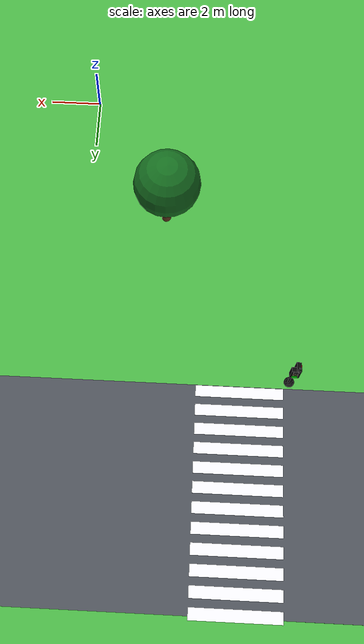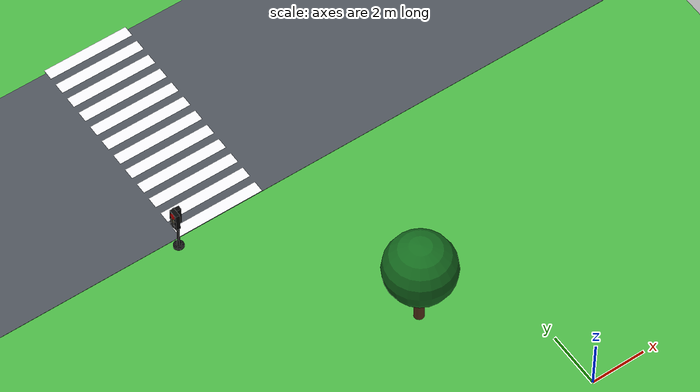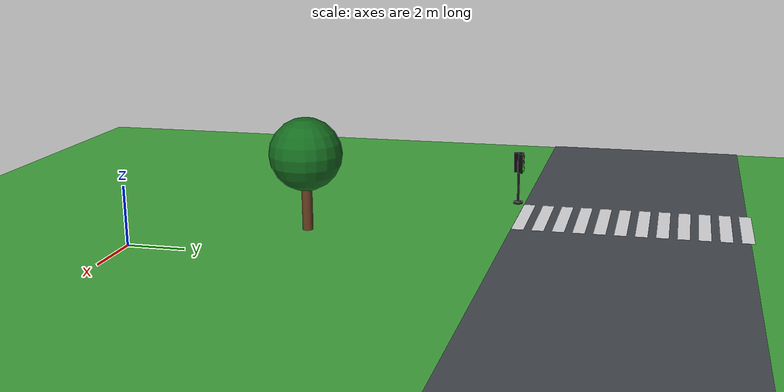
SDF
<sdf version="1.10">
 <world name="city_second">
  <model name="ground_plane">
   <static>true</static>
   <link name="link">
    <collision name="collision">
     <geometry><plane><normal>0 0 1</normal><size>300 300</size></plane></geometry>
    </collision>
    <visual name="visual">
     <geometry><plane><normal>0 0 1</normal><size>300 300</size></plane></geometry>
     <material>
      <ambient>0.280000001 0.689999998 0.25999999 1</ambient>
      <diffuse>0.280000001 0.689999998 0.25999999 1</diffuse>
      <specular>0.0299999993 0.0299999993 0.0299999993 1</specular>
     </material>
    </visual>
    <inertial>
     <mass>1</mass>
     <inertia><ixx>1</ixx><ixy>0</ixy><ixz>0</ixz><iyy>1</iyy><iyz>0</iyz><izz>1</izz></inertia>
    </inertial>
   </link>
  </model>
  <model name="road_h_2">
   <static>true</static>
   <pose>0 16 0.01 0 0 0</pose>
   <link name="link">
    <collision name="collision"><geometry><box><size>84 8 0.02</size></box></geometry></collision>
    <visual name="visual">
     <geometry><box><size>84 8 0.02</size></box></geometry>
     <material>
      <ambient>0.289999992 0.310000002 0.340000004 1</ambient>
      <diffuse>0.289999992 0.310000002 0.340000004 1</diffuse>
      <specular>0.0299999993 0.0299999993 0.0299999993 1</specular>
     </material>
    </visual>
    <inertial>
     <mass>1</mass>
     <inertia><ixx>1</ixx><ixy>0</ixy><ixz>0</ixz><iyy>1</iyy><iyz>0</iyz><izz>1</izz></inertia>
    </inertial>
   </link>
  </model>
  <model name="crosswalk_v_2_1_east_5_2">
   <static>true</static>
   <pose>-6.0115999999999996 16.072099999999999 0.017000000000000001 0 0 0</pose>
   <link name="stripe_1">
    <collision name="collision">
     <geometry><box><size>3.2000000000000002 0.41999999999999998 0.01</size></box></geometry>
    </collision>
    <visual name="visual">
     <geometry><box><size>3.2000000000000002 0.41999999999999998 0.01</size></box></geometry>
     <material>
      <ambient>0.920000017 0.920000017 0.930000007 1</ambient>
      <diffuse>0.920000017 0.920000017 0.930000007 1</diffuse>
      <specular>0.0299999993 0.0299999993 0.0299999993 1</specular>
     </material>
    </visual>
    <pose>0 -3.8500000000000001 0 0 0 0</pose>
    <inertial>
     <mass>1</mass>
     <inertia><ixx>1</ixx><ixy>0</ixy><ixz>0</ixz><iyy>1</iyy><iyz>0</iyz><izz>1</izz></inertia>
    </inertial>
   </link>
   <link name="stripe_2">
    <collision name="collision">
     <geometry><box><size>3.2000000000000002 0.41999999999999998 0.01</size></box></geometry>
    </collision>
    <visual name="visual">
     <geometry><box><size>3.2000000000000002 0.41999999999999998 0.01</size></box></geometry>
     <material>
      <ambient>0.920000017 0.920000017 0.930000007 1</ambient>
      <diffuse>0.920000017 0.920000017 0.930000007 1</diffuse>
      <specular>0.0299999993 0.0299999993 0.0299999993 1</specular>
     </material>
    </visual>
    <pose>0 -3.1500000000000004 0 0 0 0</pose>
    <inertial>
     <mass>1</mass>
     <inertia><ixx>1</ixx><ixy>0</ixy><ixz>0</ixz><iyy>1</iyy><iyz>0</iyz><izz>1</izz></inertia>
    </inertial>
   </link>
   <link name="stripe_3">
    <collision name="collision">
     <geometry><box><size>3.2000000000000002 0.41999999999999998 0.01</size></box></geometry>
    </collision>
    <visual name="visual">
     <geometry><box><size>3.2000000000000002 0.41999999999999998 0.01</size></box></geometry>
     <material>
      <ambient>0.920000017 0.920000017 0.930000007 1</ambient>
      <diffuse>0.920000017 0.920000017 0.930000007 1</diffuse>
      <specular>0.0299999993 0.0299999993 0.0299999993 1</specular>
     </material>
    </visual>
    <pose>0 -2.4499999999999993 0 0 0 0</pose>
    <inertial>
     <mass>1</mass>
     <inertia><ixx>1</ixx><ixy>0</ixy><ixz>0</ixz><iyy>1</iyy><iyz>0</iyz><izz>1</izz></inertia>
    </inertial>
   </link>
   <link name="stripe_4">
    <collision name="collision">
     <geometry><box><size>3.2000000000000002 0.41999999999999998 0.01</size></box></geometry>
    </collision>
    <visual name="visual">
     <geometry><box><size>3.2000000000000002 0.41999999999999998 0.01</size></box></geometry>
     <material>
      <ambient>0.920000017 0.920000017 0.930000007 1</ambient>
      <diffuse>0.920000017 0.920000017 0.930000007 1</diffuse>
      <specular>0.0299999993 0.0299999993 0.0299999993 1</specular>
     </material>
    </visual>
    <pose>0 -1.75 0 0 0 0</pose>
    <inertial>
     <mass>1</mass>
     <inertia><ixx>1</ixx><ixy>0</ixy><ixz>0</ixz><iyy>1</iyy><iyz>0</iyz><izz>1</izz></inertia>
    </inertial>
   </link>
   <link name="stripe_5">
    <collision name="collision">
     <geometry><box><size>3.2000000000000002 0.41999999999999998 0.01</size></box></geometry>
    </collision>
    <visual name="visual">
     <geometry><box><size>3.2000000000000002 0.41999999999999998 0.01</size></box></geometry>
     <material>
      <ambient>0.920000017 0.920000017 0.930000007 1</ambient>
      <diffuse>0.920000017 0.920000017 0.930000007 1</diffuse>
      <specular>0.0299999993 0.0299999993 0.0299999993 1</specular>
     </material>
    </visual>
    <pose>0 -1.0500000000000007 0 0 0 0</pose>
    <inertial>
     <mass>1</mass>
     <inertia><ixx>1</ixx><ixy>0</ixy><ixz>0</ixz><iyy>1</iyy><iyz>0</iyz><izz>1</izz></inertia>
    </inertial>
   </link>
   <link name="stripe_6">
    <collision name="collision">
     <geometry><box><size>3.2000000000000002 0.41999999999999998 0.01</size></box></geometry>
    </collision>
    <visual name="visual">
     <geometry><box><size>3.2000000000000002 0.41999999999999998 0.01</size></box></geometry>
     <material>
      <ambient>0.920000017 0.920000017 0.930000007 1</ambient>
      <diffuse>0.920000017 0.920000017 0.930000007 1</diffuse>
      <specular>0.0299999993 0.0299999993 0.0299999993 1</specular>
     </material>
    </visual>
    <pose>0 -0.34999999999999964 0 0 0 0</pose>
    <inertial>
     <mass>1</mass>
     <inertia><ixx>1</ixx><ixy>0</ixy><ixz>0</ixz><iyy>1</iyy><iyz>0</iyz><izz>1</izz></inertia>
    </inertial>
   </link>
   <link name="stripe_7">
    <collision name="collision">
     <geometry><box><size>3.2000000000000002 0.41999999999999998 0.01</size></box></geometry>
    </collision>
    <visual name="visual">
     <geometry><box><size>3.2000000000000002 0.41999999999999998 0.01</size></box></geometry>
     <material>
      <ambient>0.920000017 0.920000017 0.930000007 1</ambient>
      <diffuse>0.920000017 0.920000017 0.930000007 1</diffuse>
      <specular>0.0299999993 0.0299999993 0.0299999993 1</specular>
     </material>
    </visual>
    <pose>0 0.35000000000000142 0 0 0 0</pose>
    <inertial>
     <mass>1</mass>
     <inertia><ixx>1</ixx><ixy>0</ixy><ixz>0</ixz><iyy>1</iyy><iyz>0</iyz><izz>1</izz></inertia>
    </inertial>
   </link>
   <link name="stripe_8">
    <collision name="collision">
     <geometry><box><size>3.2000000000000002 0.41999999999999998 0.01</size></box></geometry>
    </collision>
    <visual name="visual">
     <geometry><box><size>3.2000000000000002 0.41999999999999998 0.01</size></box></geometry>
     <material>
      <ambient>0.920000017 0.920000017 0.930000007 1</ambient>
      <diffuse>0.920000017 0.920000017 0.930000007 1</diffuse>
      <specular>0.0299999993 0.0299999993 0.0299999993 1</specular>
     </material>
    </visual>
    <pose>0 1.0500000000000007 0 0 0 0</pose>
    <inertial>
     <mass>1</mass>
     <inertia><ixx>1</ixx><ixy>0</ixy><ixz>0</ixz><iyy>1</iyy><iyz>0</iyz><izz>1</izz></inertia>
    </inertial>
   </link>
   <link name="stripe_9">
    <collision name="collision">
     <geometry><box><size>3.2000000000000002 0.41999999999999998 0.01</size></box></geometry>
    </collision>
    <visual name="visual">
     <geometry><box><size>3.2000000000000002 0.41999999999999998 0.01</size></box></geometry>
     <material>
      <ambient>0.920000017 0.920000017 0.930000007 1</ambient>
      <diffuse>0.920000017 0.920000017 0.930000007 1</diffuse>
      <specular>0.0299999993 0.0299999993 0.0299999993 1</specular>
     </material>
    </visual>
    <pose>0 1.75 0 0 0 0</pose>
    <inertial>
     <mass>1</mass>
     <inertia><ixx>1</ixx><ixy>0</ixy><ixz>0</ixz><iyy>1</iyy><iyz>0</iyz><izz>1</izz></inertia>
    </inertial>
   </link>
   <link name="stripe_10">
    <collision name="collision">
     <geometry><box><size>3.2000000000000002 0.41999999999999998 0.01</size></box></geometry>
    </collision>
    <visual name="visual">
     <geometry><box><size>3.2000000000000002 0.41999999999999998 0.01</size></box></geometry>
     <material>
      <ambient>0.920000017 0.920000017 0.930000007 1</ambient>
      <diffuse>0.920000017 0.920000017 0.930000007 1</diffuse>
      <specular>0.0299999993 0.0299999993 0.0299999993 1</specular>
     </material>
    </visual>
    <pose>0 2.4499999999999993 0 0 0 0</pose>
    <inertial>
     <mass>1</mass>
     <inertia><ixx>1</ixx><ixy>0</ixy><ixz>0</ixz><iyy>1</iyy><iyz>0</iyz><izz>1</izz></inertia>
    </inertial>
   </link>
   <link name="stripe_11">
    <collision name="collision">
     <geometry><box><size>3.2000000000000002 0.41999999999999998 0.01</size></box></geometry>
    </collision>
    <visual name="visual">
     <geometry><box><size>3.2000000000000002 0.41999999999999998 0.01</size></box></geometry>
     <material>
      <ambient>0.920000017 0.920000017 0.930000007 1</ambient>
      <diffuse>0.920000017 0.920000017 0.930000007 1</diffuse>
      <specular>0.0299999993 0.0299999993 0.0299999993 1</specular>
     </material>
    </visual>
    <pose>0 3.1499999999999986 0 0 0 0</pose>
    <inertial>
     <mass>1</mass>
     <inertia><ixx>1</ixx><ixy>0</ixy><ixz>0</ixz><iyy>1</iyy><iyz>0</iyz><izz>1</izz></inertia>
    </inertial>
   </link>
   <link name="stripe_12">
    <collision name="collision">
     <geometry><box><size>3.2000000000000002 0.41999999999999998 0.01</size></box></geometry>
    </collision>
    <visual name="visual">
     <geometry><box><size>3.2000000000000002 0.41999999999999998 0.01</size></box></geometry>
     <material>
      <ambient>0.920000017 0.920000017 0.930000007 1</ambient>
      <diffuse>0.920000017 0.920000017 0.930000007 1</diffuse>
      <specular>0.0299999993 0.0299999993 0.0299999993 1</specular>
     </material>
    </visual>
    <pose>0 3.8500000000000014 0 0 0 0</pose>
    <inertial>
     <mass>1</mass>
     <inertia><ixx>1</ixx><ixy>0</ixy><ixz>0</ixz><iyy>1</iyy><iyz>0</iyz><izz>1</izz></inertia>
    </inertial>
   </link>
  </model>
  <model name="Oak tree">
   <static>true</static>
   <pose>-3.0260199999999999 5.1699000000000002 0 0 0 0</pose>
   <link name="link">
    <collision name="footprint">
     <pose>0 0 0.050000000000000003 0 0 0</pose>
     <geometry>
      <cylinder><radius>0.90000000000000002</radius><length>0.10000000000000001</length></cylinder>
     </geometry>
    </collision>
    <visual name="trunk">
     <pose>0 0 1.1000000000000001 0 0 0</pose>
     <geometry>
      <cylinder><radius>0.17999999999999999</radius><length>2.2000000000000002</length></cylinder>
     </geometry>
     <material>
      <ambient>0.379999995 0.219999999 0.109999999 1</ambient>
      <diffuse>0.379999995 0.219999999 0.109999999 1</diffuse>
      <specular>0.119999997 0.119999997 0.119999997 1</specular>
      <emissive>0 0 0 1</emissive>
     </material>
    </visual>
    <visual name="crown">
     <pose>0 0 2.6499999999999999 0 0 0</pose>
     <geometry><sphere><radius>1.25</radius></sphere></geometry>
     <material>
      <ambient>0.0799999982 0.419999987 0.119999997 1</ambient>
      <diffuse>0.0799999982 0.419999987 0.119999997 1</diffuse>
      <specular>0.119999997 0.119999997 0.119999997 1</specular>
      <emissive>0 0 0 1</emissive>
     </material>
    </visual>
    <inertial>
     <mass>1</mass>
     <inertia><ixx>1</ixx><ixy>0</ixy><ixz>0</ixz><iyy>1</iyy><iyz>0</iyz><izz>1</izz></inertia>
    </inertial>
   </link>
  </model>
  <model name="simple_traffic_light_green_north_1_2_1">
   <static>true</static>
   <pose>-7.828921965272885 11.742283597762533 0 0 0 0</pose>
   <link name="base">
    <pose>0 0 0.040000000000000001 0 0 0</pose>
    <collision name="collision">
     <geometry>
      <cylinder><radius>0.17999999999999999</radius><length>0.080000000000000002</length></cylinder>
     </geometry>
    </collision>
    <visual name="visual">
     <geometry>
      <cylinder><radius>0.17999999999999999</radius><length>0.080000000000000002</length></cylinder>
     </geometry>
     <material>
      <ambient>0.0799999982 0.0799999982 0.0799999982 1</ambient>
      <diffuse>0.0799999982 0.0799999982 0.0799999982 1</diffuse>
      <specular>0.150000006 0.150000006 0.150000006 1</specular>
      <emissive>0 0 0 1</emissive>
     </material>
    </visual>
    <inertial>
     <mass>1</mass>
     <inertia><ixx>1</ixx><ixy>0</ixy><ixz>0</ixz><iyy>1</iyy><iyz>0</iyz><izz>1</izz></inertia>
    </inertial>
   </link>
   <link name="pole">
    <pose>0 0 0.80000000000000004 0 0 0</pose>
    <collision name="collision">
     <geometry>
      <cylinder><radius>0.044999999999999998</radius><length>1.6000000000000001</length></cylinder>
     </geometry>
    </collision>
    <visual name="visual">
     <geometry>
      <cylinder><radius>0.044999999999999998</radius><length>1.6000000000000001</length></cylinder>
     </geometry>
     <material>
      <ambient>0.0799999982 0.0799999982 0.0799999982 1</ambient>
      <diffuse>0.0799999982 0.0799999982 0.0799999982 1</diffuse>
      <specular>0.150000006 0.150000006 0.150000006 1</specular>
      <emissive>0 0 0 1</emissive>
     </material>
    </visual>
    <inertial>
     <mass>1</mass>
     <inertia><ixx>1</ixx><ixy>0</ixy><ixz>0</ixz><iyy>1</iyy><iyz>0</iyz><izz>1</izz></inertia>
    </inertial>
   </link>
   <link name="signal_box">
    <pose>0 0.089999999999999858 1.55 0 0 0</pose>
    <collision name="collision">
     <geometry><box><size>0.34000000000000002 0.16 0.71999999999999997</size></box></geometry>
    </collision>
    <visual name="visual">
     <geometry><box><size>0.34000000000000002 0.16 0.71999999999999997</size></box></geometry>
     <material>
      <ambient>0.0199999996 0.0199999996 0.0199999996 1</ambient>
      <diffuse>0.0199999996 0.0199999996 0.0199999996 1</diffuse>
      <specular>0.150000006 0.150000006 0.150000006 1</specular>
      <emissive>0 0 0 1</emissive>
     </material>
    </visual>
    <inertial>
     <mass>1</mass>
     <inertia><ixx>1</ixx><ixy>0</ixy><ixz>0</ixz><iyy>1</iyy><iyz>0</iyz><izz>1</izz></inertia>
    </inertial>
   </link>
   <link name="red_lens">
    <pose>0 0.18099999999999916 1.78 1.5707963268000003 0 0</pose>
    <collision name="collision">
     <geometry><cylinder><radius>0.105</radius><length>0.035000000000000003</length></cylinder></geometry>
    </collision>
    <visual name="visual">
     <geometry><cylinder><radius>0.105</radius><length>0.035000000000000003</length></cylinder></geometry>
     <material>
      <ambient>0.0799999982 0.0799999982 0.0799999982 1</ambient>
      <diffuse>0.0799999982 0.0799999982 0.0799999982 1</diffuse>
      <specular>0.150000006 0.150000006 0.150000006 1</specular>
      <emissive>0 0 0 1</emissive>
     </material>
    </visual>
    <inertial>
     <mass>1</mass>
     <inertia><ixx>1</ixx><ixy>0</ixy><ixz>0</ixz><iyy>1</iyy><iyz>0</iyz><izz>1</izz></inertia>
    </inertial>
   </link>
   <link name="yellow_lens">
    <pose>0 0.18200000000000038 1.55 1.5707963268000003 0 0</pose>
    <collision name="collision">
     <geometry>
      <cylinder><radius>0.095000000000000001</radius><length>0.035000000000000003</length></cylinder>
     </geometry>
    </collision>
    <visual name="visual">
     <geometry>
      <cylinder><radius>0.095000000000000001</radius><length>0.035000000000000003</length></cylinder>
     </geometry>
     <material>
      <ambient>0.119999997 0.100000001 0.0199999996 1</ambient>
      <diffuse>0.119999997 0.100000001 0.0199999996 1</diffuse>
      <specular>0.150000006 0.150000006 0.150000006 1</specular>
      <emissive>0 0 0 1</emissive>
     </material>
    </visual>
    <inertial>
     <mass>1</mass>
     <inertia><ixx>1</ixx><ixy>0</ixy><ixz>0</ixz><iyy>1</iyy><iyz>0</iyz><izz>1</izz></inertia>
    </inertial>
   </link>
   <link name="green_lens">
    <pose>0 0.18299999999999983 1.3200000000000001 1.5707963268000003 0 0</pose>
    <collision name="collision">
     <geometry><cylinder><radius>0.105</radius><length>0.035000000000000003</length></cylinder></geometry>
    </collision>
    <visual name="visual">
     <geometry><cylinder><radius>0.105</radius><length>0.035000000000000003</length></cylinder></geometry>
     <material>
      <ambient>0.0199999996 1 0.0199999996 1</ambient>
      <diffuse>0.0199999996 1 0.0199999996 1</diffuse>
      <specular>0.150000006 0.150000006 0.150000006 1</specular>
      <emissive>0.0199999996 1 0.0199999996 1</emissive>
     </material>
    </visual>
    <inertial>
     <mass>1</mass>
     <inertia><ixx>1</ixx><ixy>0</ixy><ixz>0</ixz><iyy>1</iyy><iyz>0</iyz><izz>1</izz></inertia>
    </inertial>
   </link>
  </model>
  <model name="simple_traffic_light_red_west_2_2">
   <static>true</static>
   <pose>-7.8200928472660758 11.73966045355432 -3.4694469519536142e-17 0 0 1.5707999672671753</pose>
   <link name="base">
    <pose>0 0 0.040000000000000001 0 0 0</pose>
    <collision name="collision">
     <geometry>
      <cylinder><radius>0.17999999999999999</radius><length>0.080000000000000002</length></cylinder>
     </geometry>
    </collision>
    <visual name="visual">
     <geometry>
      <cylinder><radius>0.17999999999999999</radius><length>0.080000000000000002</length></cylinder>
     </geometry>
     <material>
      <ambient>0.0799999982 0.0799999982 0.0799999982 1</ambient>
      <diffuse>0.0799999982 0.0799999982 0.0799999982 1</diffuse>
      <specular>0.150000006 0.150000006 0.150000006 1</specular>
      <emissive>0 0 0 1</emissive>
     </material>
    </visual>
    <inertial>
     <mass>1</mass>
     <inertia><ixx>1</ixx><ixy>0</ixy><ixz>0</ixz><iyy>1</iyy><iyz>0</iyz><izz>1</izz></inertia>
    </inertial>
   </link>
   <link name="pole">
    <pose>2.1316282072803006e-14 -1.0658141036401503e-14 0.80000000000000004 0 0 1.1102230246251565e-16</pose>
    <collision name="collision">
     <geometry>
      <cylinder><radius>0.044999999999999998</radius><length>1.6000000000000001</length></cylinder>
     </geometry>
    </collision>
    <visual name="visual">
     <geometry>
      <cylinder><radius>0.044999999999999998</radius><length>1.6000000000000001</length></cylinder>
     </geometry>
     <material>
      <ambient>0.0799999982 0.0799999982 0.0799999982 1</ambient>
      <diffuse>0.0799999982 0.0799999982 0.0799999982 1</diffuse>
      <specular>0.150000006 0.150000006 0.150000006 1</specular>
      <emissive>0 0 0 1</emissive>
     </material>
    </visual>
    <inertial>
     <mass>1</mass>
     <inertia><ixx>1</ixx><ixy>0</ixy><ixz>0</ixz><iyy>1</iyy><iyz>0</iyz><izz>1</izz></inertia>
    </inertial>
   </link>
   <link name="signal_box">
    <pose>8.8817841970012523e-15 0.089999999999993641 1.5500000000000003 0 0 1.1102230246251565e-16</pose>
    <collision name="collision">
     <geometry><box><size>0.34000000000000002 0.16 0.71999999999999997</size></box></geometry>
    </collision>
    <visual name="visual">
     <geometry><box><size>0.34000000000000002 0.16 0.71999999999999997</size></box></geometry>
     <material>
      <ambient>0.0199999996 0.0199999996 0.0199999996 1</ambient>
      <diffuse>0.0199999996 0.0199999996 0.0199999996 1</diffuse>
      <specular>0.150000006 0.150000006 0.150000006 1</specular>
      <emissive>0 0 0 1</emissive>
     </material>
    </visual>
    <inertial>
     <mass>1</mass>
     <inertia><ixx>1</ixx><ixy>0</ixy><ixz>0</ixz><iyy>1</iyy><iyz>0</iyz><izz>1</izz></inertia>
    </inertial>
   </link>
   <link name="red_lens">
    <pose>1.9539925233402755e-14 0.1809999999999885 1.7800000000000002 1.5707963268000005 7.8504622949614379e-17 -6.0448559659323335e-15</pose>
    <collision name="collision">
     <geometry><cylinder><radius>0.105</radius><length>0.035000000000000003</length></cylinder></geometry>
    </collision>
    <visual name="visual">
     <geometry><cylinder><radius>0.105</radius><length>0.035000000000000003</length></cylinder></geometry>
     <material>
      <ambient>1 0.0199999996 0.0199999996 1</ambient>
      <diffuse>1 0.0199999996 0.0199999996 1</diffuse>
      <specular>0.150000006 0.150000006 0.150000006 1</specular>
      <emissive>1 0.0199999996 0.0199999996 1</emissive>
     </material>
    </visual>
    <inertial>
     <mass>1</mass>
     <inertia><ixx>1</ixx><ixy>0</ixy><ixz>0</ixz><iyy>1</iyy><iyz>0</iyz><izz>1</izz></inertia>
    </inertial>
   </link>
   <link name="yellow_lens">
    <pose>1.0658141036401503e-14 0.18200000000000038 1.5500000000000003 1.5707963268000005 7.8504622949614379e-17 -6.0448559659323335e-15</pose>
    <collision name="collision">
     <geometry>
      <cylinder><radius>0.095000000000000001</radius><length>0.035000000000000003</length></cylinder>
     </geometry>
    </collision>
    <visual name="visual">
     <geometry>
      <cylinder><radius>0.095000000000000001</radius><length>0.035000000000000003</length></cylinder>
     </geometry>
     <material>
      <ambient>0.119999997 0.100000001 0.0199999996 1</ambient>
      <diffuse>0.119999997 0.100000001 0.0199999996 1</diffuse>
      <specular>0.150000006 0.150000006 0.150000006 1</specular>
      <emissive>0 0 0 1</emissive>
     </material>
    </visual>
    <inertial>
     <mass>1</mass>
     <inertia><ixx>1</ixx><ixy>0</ixy><ixz>0</ixz><iyy>1</iyy><iyz>0</iyz><izz>1</izz></inertia>
    </inertial>
   </link>
   <link name="green_lens">
    <pose>2.1316282072803006e-14 0.18299999999999628 1.3199999999999998 1.5707963268000005 7.8504622949614379e-17 -6.0448559659323335e-15</pose>
    <collision name="collision">
     <geometry><cylinder><radius>0.105</radius><length>0.035000000000000003</length></cylinder></geometry>
    </collision>
    <visual name="visual">
     <geometry><cylinder><radius>0.105</radius><length>0.035000000000000003</length></cylinder></geometry>
     <material>
      <ambient>0.0799999982 0.0799999982 0.0799999982 1</ambient>
      <diffuse>0.0799999982 0.0799999982 0.0799999982 1</diffuse>
      <specular>0.150000006 0.150000006 0.150000006 1</specular>
      <emissive>0 0 0 1</emissive>
     </material>
    </visual>
    <inertial>
     <mass>1</mass>
     <inertia><ixx>1</ixx><ixy>0</ixy><ixz>0</ixz><iyy>1</iyy><iyz>0</iyz><izz>1</izz></inertia>
    </inertial>
   </link>
  </model>
 </world>
</sdf>
